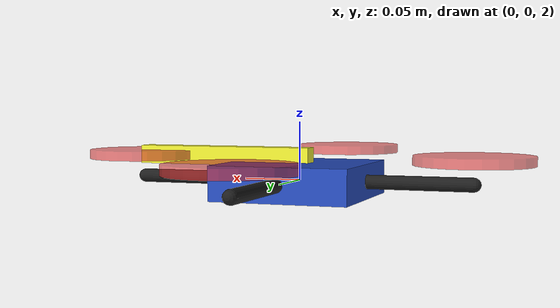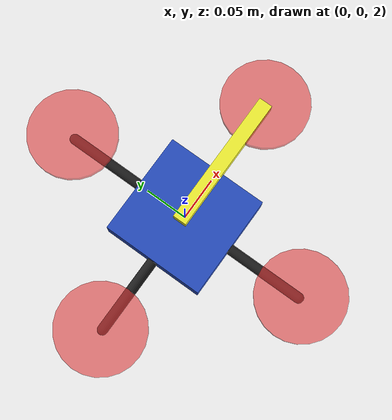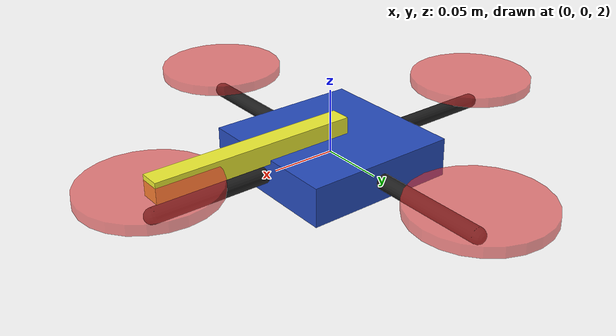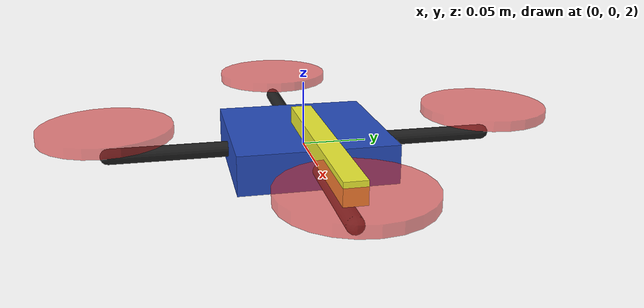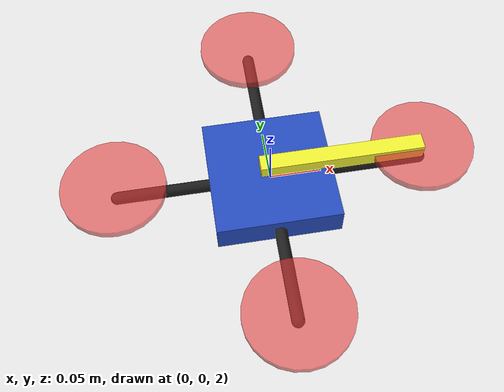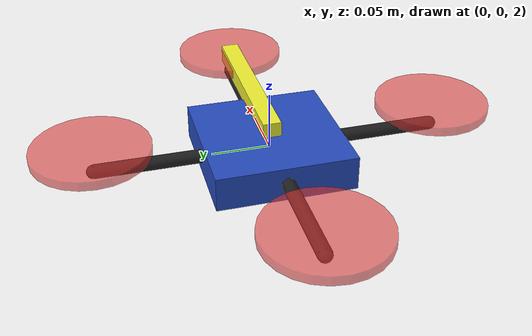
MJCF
<mujoco model="quadcopter">
  <default>
    <default class="rotor_site">
      <site type="cylinder" size="0.05 0.004" rgba="0.9 0.2 0.2 0.6"/>
    </default>
    <default class="arm">
      <geom type="capsule" size="0.006" rgba="0.12 0.12 0.12 1" mass="0"/>
    </default>
  </default>

  <worldbody>
    <body name="interceptor" pos="0 0 2">
      <freejoint name="interceptor_root"/>
      <!-- Explicit inertial: mass/inertia come from constants.py, not geom defaults. -->
      <inertial pos="0 0 0" mass="1.0" diaginertia="0.01 0.01 0.02"/>

      <geom name="interceptor_core" type="box" size="0.06 0.06 0.015"
            rgba="0.15 0.30 0.75 1" mass="0"/>

      <!-- Arms out to each rotor (visual only; mass is in the inertial element). -->
      <geom name="arm_front" class="arm" fromto="0 0 0  0.15 0 0"/>
      <geom name="arm_right" class="arm" fromto="0 0 0  0 -0.15 0"/>
      <geom name="arm_back"  class="arm" fromto="0 0 0 -0.15 0 0"/>
      <geom name="arm_left"  class="arm" fromto="0 0 0  0 0.15 0"/>

      <!-- Rotor thrust application points, in MotorCommand order. -->
      <site name="rotor0_front" class="rotor_site" pos=" 0.15  0.00 0.02"/>
      <site name="rotor1_right" class="rotor_site" pos=" 0.00 -0.15 0.02"/>
      <site name="rotor2_back"  class="rotor_site" pos="-0.15  0.00 0.02"/>
      <site name="rotor3_left"  class="rotor_site" pos=" 0.00  0.15 0.02"/>

      <!-- Heading marker so attitude is visible in the replay viewer. -->
      <site name="interceptor_nose" type="box" size="0.08 0.008 0.008" pos="0.07 0 0.02"
            rgba="0.95 0.95 0.2 1"/>
    </body>
  </worldbody>
</mujoco>
